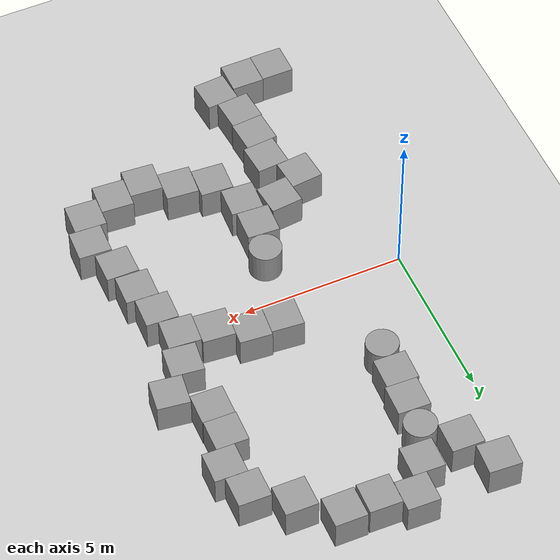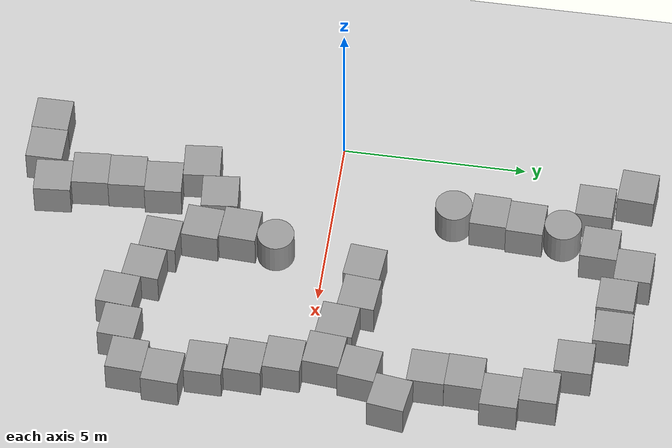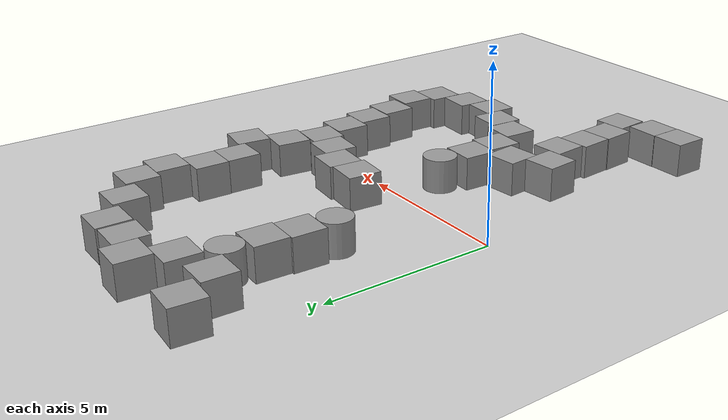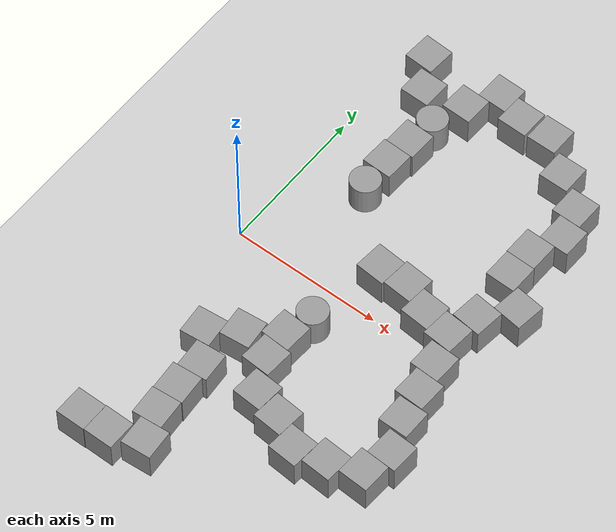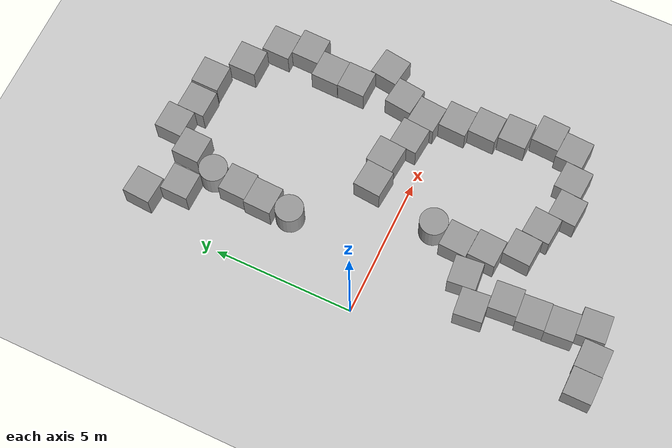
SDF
<sdf version="1.6">
 <world name="default">
  <model name="ground_plane">
   <static>1</static>
   <link name="link">
    <collision name="collision">
     <geometry><plane><normal>0 0 1</normal><size>100 100</size></plane></geometry>
     <surface>
      <contact><collide_bitmask>65535</collide_bitmask></contact>
      <friction><ode><mu>100</mu><mu2>50</mu2></ode></friction>
     </surface>
    </collision>
    <visual name="visual">
     <cast_shadows>0</cast_shadows>
     <geometry><plane><normal>0 0 1</normal><size>100 100</size></plane></geometry>
     <material>
      <script><uri>file://media/materials/scripts/gazebo.material</uri><name>Gazebo/Grey</name></script>
     </material>
    </visual>
   </link>
  </model>
  <model name="unit_cylinder_0">
   <pose>2.13016 3.28906 0.499992 -3e-06 3e-06 0.007664</pose>
   <link name="link">
    <inertial>
     <mass>1</mass>
     <inertia><ixx>0.145833</ixx><ixy>0</ixy><ixz>0</ixz><iyy>0.145833</iyy><iyz>0</iyz><izz>0.125</izz></inertia>
    </inertial>
    <collision name="collision">
     <geometry><cylinder><radius>0.5</radius><length>1</length></cylinder></geometry>
    </collision>
    <visual name="visual">
     <geometry><cylinder><radius>0.5</radius><length>1</length></cylinder></geometry>
     <material>
      <script><name>Gazebo/Grey</name><uri>file://media/materials/scripts/gazebo.material</uri></script>
     </material>
    </visual>
   </link>
  </model>
  <model name="unit_cylinder_2">
   <pose>2.35707 6.28338 0.5 0 -0 0.01532</pose>
   <link name="link">
    <inertial>
     <mass>1</mass>
     <inertia><ixx>0.145833</ixx><ixy>0</ixy><ixz>0</ixz><iyy>0.145833</iyy><iyz>0</iyz><izz>0.125</izz></inertia>
    </inertial>
    <collision name="collision">
     <geometry><cylinder><radius>0.5</radius><length>1</length></cylinder></geometry>
    </collision>
    <visual name="visual">
     <geometry><cylinder><radius>0.5</radius><length>1</length></cylinder></geometry>
     <material>
      <script><name>Gazebo/Grey</name><uri>file://media/materials/scripts/gazebo.material</uri></script>
     </material>
    </visual>
   </link>
  </model>
  <model name="unit_box_1">
   <pose>1.61751 -3.65433 0.499995 -1e-05 -0 0.093391</pose>
   <link name="link">
    <inertial>
     <mass>1</mass>
     <inertia>
      <ixx>0.166667</ixx>
      <ixy>0</ixy>
      <ixz>0</ixz>
      <iyy>0.166667</iyy>
      <iyz>0</iyz>
      <izz>0.166667</izz>
     </inertia>
    </inertial>
    <collision name="collision"><geometry><box><size>1 1 1</size></box></geometry></collision>
    <visual name="visual">
     <geometry><box><size>1 1 1</size></box></geometry>
     <material>
      <script><name>Gazebo/Grey</name><uri>file://media/materials/scripts/gazebo.material</uri></script>
     </material>
    </visual>
   </link>
  </model>
  <model name="unit_cylinder_3">
   <pose>3.76819 -1.3199 0.5 0 -0 0.098095</pose>
   <link name="link">
    <inertial>
     <mass>1</mass>
     <inertia><ixx>0.145833</ixx><ixy>0</ixy><ixz>0</ixz><iyy>0.145833</iyy><iyz>0</iyz><izz>0.125</izz></inertia>
    </inertial>
    <collision name="collision">
     <geometry><cylinder><radius>0.5</radius><length>1</length></cylinder></geometry>
    </collision>
    <visual name="visual">
     <geometry><cylinder><radius>0.5</radius><length>1</length></cylinder></geometry>
     <material>
      <script><name>Gazebo/Grey</name><uri>file://media/materials/scripts/gazebo.material</uri></script>
     </material>
    </visual>
   </link>
  </model>
  <model name="unit_box_2">
   <pose>4.32846 1.18136 0.499995 1e-05 -0 -0.087078</pose>
   <link name="link">
    <inertial>
     <mass>1</mass>
     <inertia>
      <ixx>0.166667</ixx>
      <ixy>0</ixy>
      <ixz>0</ixz>
      <iyy>0.166667</iyy>
      <iyz>0</iyz>
      <izz>0.166667</izz>
     </inertia>
    </inertial>
    <collision name="collision"><geometry><box><size>1 1 1</size></box></geometry></collision>
    <visual name="visual">
     <geometry><box><size>1 1 1</size></box></geometry>
     <material>
      <script><name>Gazebo/Grey</name><uri>file://media/materials/scripts/gazebo.material</uri></script>
     </material>
    </visual>
   </link>
  </model>
  <model name="unit_box_5_clone_1">
   <pose>0.631048 -7.96603 0.499995 1e-05 -0 -0.000764</pose>
   <link name="link">
    <inertial>
     <mass>1</mass>
     <inertia>
      <ixx>0.166667</ixx>
      <ixy>0</ixy>
      <ixz>0</ixz>
      <iyy>0.166667</iyy>
      <iyz>0</iyz>
      <izz>0.166667</izz>
     </inertia>
    </inertial>
    <collision name="collision"><geometry><box><size>1 1 1</size></box></geometry></collision>
    <visual name="visual">
     <geometry><box><size>1 1 1</size></box></geometry>
     <material>
      <script><name>Gazebo/Grey</name><uri>file://media/materials/scripts/gazebo.material</uri></script>
     </material>
    </visual>
   </link>
  </model>
  <model name="unit_box_5_clone_2">
   <pose>1.63194 -7.95048 0.499995 1e-05 0 -0.001337</pose>
   <link name="link">
    <inertial>
     <mass>1</mass>
     <inertia>
      <ixx>0.166667</ixx>
      <ixy>0</ixy>
      <ixz>0</ixz>
      <iyy>0.166667</iyy>
      <iyz>0</iyz>
      <izz>0.166667</izz>
     </inertia>
    </inertial>
    <collision name="collision"><geometry><box><size>1 1 1</size></box></geometry></collision>
    <visual name="visual">
     <geometry><box><size>1 1 1</size></box></geometry>
     <material>
      <script><name>Gazebo/Grey</name><uri>file://media/materials/scripts/gazebo.material</uri></script>
     </material>
    </visual>
   </link>
  </model>
  <model name="unit_box_5_clone_3">
   <pose>2.67093 -7.58371 0.499995 -0 -1e-05 0.076198</pose>
   <link name="link">
    <inertial>
     <mass>1</mass>
     <inertia>
      <ixx>0.166667</ixx>
      <ixy>0</ixy>
      <ixz>0</ixz>
      <iyy>0.166667</iyy>
      <iyz>0</iyz>
      <izz>0.166667</izz>
     </inertia>
    </inertial>
    <collision name="collision"><geometry><box><size>1 1 1</size></box></geometry></collision>
    <visual name="visual">
     <geometry><box><size>1 1 1</size></box></geometry>
     <material>
      <script><name>Gazebo/Grey</name><uri>file://media/materials/scripts/gazebo.material</uri></script>
     </material>
    </visual>
   </link>
  </model>
  <model name="unit_box_5_clone_4">
   <pose>2.29353 -6.60938 0.5 0 -0 0.077088</pose>
   <link name="link">
    <inertial>
     <mass>1</mass>
     <inertia>
      <ixx>0.166667</ixx>
      <ixy>0</ixy>
      <ixz>0</ixz>
      <iyy>0.166667</iyy>
      <iyz>0</iyz>
      <izz>0.166667</izz>
     </inertia>
    </inertial>
    <collision name="collision"><geometry><box><size>1 1 1</size></box></geometry></collision>
    <visual name="visual">
     <geometry><box><size>1 1 1</size></box></geometry>
     <material>
      <script><name>Gazebo/Grey</name><uri>file://media/materials/scripts/gazebo.material</uri></script>
     </material>
    </visual>
   </link>
  </model>
  <model name="unit_box_5_clone_5">
   <pose>2.2407 -5.61048 0.499995 0 1e-05 0.077075</pose>
   <link name="link">
    <inertial>
     <mass>1</mass>
     <inertia>
      <ixx>0.166667</ixx>
      <ixy>0</ixy>
      <ixz>0</ixz>
      <iyy>0.166667</iyy>
      <iyz>0</iyz>
      <izz>0.166667</izz>
     </inertia>
    </inertial>
    <collision name="collision"><geometry><box><size>1 1 1</size></box></geometry></collision>
    <visual name="visual">
     <geometry><box><size>1 1 1</size></box></geometry>
     <material>
      <script><name>Gazebo/Grey</name><uri>file://media/materials/scripts/gazebo.material</uri></script>
     </material>
    </visual>
   </link>
  </model>
  <model name="unit_box_5_clone_6">
   <pose>2.29998 -4.60288 0.5 0 -0 0.07714</pose>
   <link name="link">
    <inertial>
     <mass>1</mass>
     <inertia>
      <ixx>0.166667</ixx>
      <ixy>0</ixy>
      <ixz>0</ixz>
      <iyy>0.166667</iyy>
      <iyz>0</iyz>
      <izz>0.166667</izz>
     </inertia>
    </inertial>
    <collision name="collision"><geometry><box><size>1 1 1</size></box></geometry></collision>
    <visual name="visual">
     <geometry><box><size>1 1 1</size></box></geometry>
     <material>
      <script><name>Gazebo/Grey</name><uri>file://media/materials/scripts/gazebo.material</uri></script>
     </material>
    </visual>
   </link>
  </model>
  <model name="unit_box_5_clone_7">
   <pose>2.56221 -3.01751 0.5 0 -0 0.095408</pose>
   <link name="link">
    <inertial>
     <mass>1</mass>
     <inertia>
      <ixx>0.166667</ixx>
      <ixy>0</ixy>
      <ixz>0</ixz>
      <iyy>0.166667</iyy>
      <iyz>0</iyz>
      <izz>0.166667</izz>
     </inertia>
    </inertial>
    <collision name="collision"><geometry><box><size>1 1 1</size></box></geometry></collision>
    <visual name="visual">
     <geometry><box><size>1 1 1</size></box></geometry>
     <material>
      <script><name>Gazebo/Grey</name><uri>file://media/materials/scripts/gazebo.material</uri></script>
     </material>
    </visual>
   </link>
  </model>
  <model name="unit_box_5_clone_8">
   <pose>3.64924 -3.31863 0.5 0 -0 -0.055843</pose>
   <link name="link">
    <inertial>
     <mass>1</mass>
     <inertia>
      <ixx>0.166667</ixx>
      <ixy>0</ixy>
      <ixz>0</ixz>
      <iyy>0.166667</iyy>
      <iyz>0</iyz>
      <izz>0.166667</izz>
     </inertia>
    </inertial>
    <collision name="collision"><geometry><box><size>1 1 1</size></box></geometry></collision>
    <visual name="visual">
     <geometry><box><size>1 1 1</size></box></geometry>
     <material>
      <script><name>Gazebo/Grey</name><uri>file://media/materials/scripts/gazebo.material</uri></script>
     </material>
    </visual>
   </link>
  </model>
  <model name="unit_box_5_clone_9">
   <pose>4.17753 -4.37603 0.5 0 0 -0.066539</pose>
   <link name="link">
    <inertial>
     <mass>1</mass>
     <inertia>
      <ixx>0.166667</ixx>
      <ixy>0</ixy>
      <ixz>0</ixz>
      <iyy>0.166667</iyy>
      <iyz>0</iyz>
      <izz>0.166667</izz>
     </inertia>
    </inertial>
    <collision name="collision"><geometry><box><size>1 1 1</size></box></geometry></collision>
    <visual name="visual">
     <geometry><box><size>1 1 1</size></box></geometry>
     <material>
      <script><name>Gazebo/Grey</name><uri>file://media/materials/scripts/gazebo.material</uri></script>
     </material>
    </visual>
   </link>
  </model>
  <model name="unit_box_5_clone_10">
   <pose>5.1654 -4.66592 0.499995 0 -1e-05 -0.083866</pose>
   <link name="link">
    <inertial>
     <mass>1</mass>
     <inertia>
      <ixx>0.166667</ixx>
      <ixy>0</ixy>
      <ixz>0</ixz>
      <iyy>0.166667</iyy>
      <iyz>0</iyz>
      <izz>0.166667</izz>
     </inertia>
    </inertial>
    <collision name="collision"><geometry><box><size>1 1 1</size></box></geometry></collision>
    <visual name="visual">
     <geometry><box><size>1 1 1</size></box></geometry>
     <material>
      <script><name>Gazebo/Grey</name><uri>file://media/materials/scripts/gazebo.material</uri></script>
     </material>
    </visual>
   </link>
  </model>
  <model name="unit_box_5_clone_11">
   <pose>6.12609 -5.21323 0.499995 -1e-05 -0 -0.077569</pose>
   <link name="link">
    <inertial>
     <mass>1</mass>
     <inertia>
      <ixx>0.166667</ixx>
      <ixy>0</ixy>
      <ixz>0</ixz>
      <iyy>0.166667</iyy>
      <iyz>0</iyz>
      <izz>0.166667</izz>
     </inertia>
    </inertial>
    <collision name="collision"><geometry><box><size>1 1 1</size></box></geometry></collision>
    <visual name="visual">
     <geometry><box><size>1 1 1</size></box></geometry>
     <material>
      <script><name>Gazebo/Grey</name><uri>file://media/materials/scripts/gazebo.material</uri></script>
     </material>
    </visual>
   </link>
  </model>
  <model name="unit_box_5_clone_12">
   <pose>7.14926 -4.99337 0.5 -0 -0 -0.062698</pose>
   <link name="link">
    <inertial>
     <mass>1</mass>
     <inertia>
      <ixx>0.166667</ixx>
      <ixy>0</ixy>
      <ixz>0</ixz>
      <iyy>0.166667</iyy>
      <iyz>0</iyz>
      <izz>0.166667</izz>
     </inertia>
    </inertial>
    <collision name="collision"><geometry><box><size>1 1 1</size></box></geometry></collision>
    <visual name="visual">
     <geometry><box><size>1 1 1</size></box></geometry>
     <material>
      <script><name>Gazebo/Grey</name><uri>file://media/materials/scripts/gazebo.material</uri></script>
     </material>
    </visual>
   </link>
  </model>
  <model name="unit_box_5_clone_13">
   <pose>8.17607 -4.61194 0.499995 0 -1e-05 -0.050131</pose>
   <link name="link">
    <inertial>
     <mass>1</mass>
     <inertia>
      <ixx>0.166667</ixx>
      <ixy>0</ixy>
      <ixz>0</ixz>
      <iyy>0.166667</iyy>
      <iyz>0</iyz>
      <izz>0.166667</izz>
     </inertia>
    </inertial>
    <collision name="collision"><geometry><box><size>1 1 1</size></box></geometry></collision>
    <visual name="visual">
     <geometry><box><size>1 1 1</size></box></geometry>
     <material>
      <script><name>Gazebo/Grey</name><uri>file://media/materials/scripts/gazebo.material</uri></script>
     </material>
    </visual>
   </link>
  </model>
  <model name="unit_box_5_clone_14">
   <pose>8.42571 -3.6221 0.499995 0 1e-05 -0.048098</pose>
   <link name="link">
    <inertial>
     <mass>1</mass>
     <inertia>
      <ixx>0.166667</ixx>
      <ixy>0</ixy>
      <ixz>0</ixz>
      <iyy>0.166667</iyy>
      <iyz>0</iyz>
      <izz>0.166667</izz>
     </inertia>
    </inertial>
    <collision name="collision"><geometry><box><size>1 1 1</size></box></geometry></collision>
    <visual name="visual">
     <geometry><box><size>1 1 1</size></box></geometry>
     <material>
      <script><name>Gazebo/Grey</name><uri>file://media/materials/scripts/gazebo.material</uri></script>
     </material>
    </visual>
   </link>
  </model>
  <model name="unit_box_5_clone_15">
   <pose>8 -2.55585 0.499995 -1e-05 -0 -0.010235</pose>
   <link name="link">
    <inertial>
     <mass>1</mass>
     <inertia>
      <ixx>0.166667</ixx>
      <ixy>0</ixy>
      <ixz>0</ixz>
      <iyy>0.166667</iyy>
      <iyz>0</iyz>
      <izz>0.166667</izz>
     </inertia>
    </inertial>
    <collision name="collision"><geometry><box><size>1 1 1</size></box></geometry></collision>
    <visual name="visual">
     <geometry><box><size>1 1 1</size></box></geometry>
     <material>
      <script><name>Gazebo/Grey</name><uri>file://media/materials/scripts/gazebo.material</uri></script>
     </material>
    </visual>
   </link>
  </model>
  <model name="unit_box_5_clone_16">
   <pose>7.79479 -1.5267 0.499995 -0 1e-05 -0.036829</pose>
   <link name="link">
    <inertial>
     <mass>1</mass>
     <inertia>
      <ixx>0.166667</ixx>
      <ixy>0</ixy>
      <ixz>0</ixz>
      <iyy>0.166667</iyy>
      <iyz>0</iyz>
      <izz>0.166667</izz>
     </inertia>
    </inertial>
    <collision name="collision"><geometry><box><size>1 1 1</size></box></geometry></collision>
    <visual name="visual">
     <geometry><box><size>1 1 1</size></box></geometry>
     <material>
      <script><name>Gazebo/Grey</name><uri>file://media/materials/scripts/gazebo.material</uri></script>
     </material>
    </visual>
   </link>
  </model>
  <model name="unit_box_5_clone_17">
   <pose>7.57763 -0.515913 0.499995 -1e-05 -0 -0.040724</pose>
   <link name="link">
    <inertial>
     <mass>1</mass>
     <inertia>
      <ixx>0.166667</ixx>
      <ixy>0</ixy>
      <ixz>0</ixz>
      <iyy>0.166667</iyy>
      <iyz>0</iyz>
      <izz>0.166667</izz>
     </inertia>
    </inertial>
    <collision name="collision"><geometry><box><size>1 1 1</size></box></geometry></collision>
    <visual name="visual">
     <geometry><box><size>1 1 1</size></box></geometry>
     <material>
      <script><name>Gazebo/Grey</name><uri>file://media/materials/scripts/gazebo.material</uri></script>
     </material>
    </visual>
   </link>
  </model>
  <model name="unit_box_5_clone_18">
   <pose>7.28255 0.519387 0.5 0 -0 -0.08662</pose>
   <link name="link">
    <inertial>
     <mass>1</mass>
     <inertia>
      <ixx>0.166667</ixx>
      <ixy>0</ixy>
      <ixz>0</ixz>
      <iyy>0.166667</iyy>
      <iyz>0</iyz>
      <izz>0.166667</izz>
     </inertia>
    </inertial>
    <collision name="collision"><geometry><box><size>1 1 1</size></box></geometry></collision>
    <visual name="visual">
     <geometry><box><size>1 1 1</size></box></geometry>
     <material>
      <script><name>Gazebo/Grey</name><uri>file://media/materials/scripts/gazebo.material</uri></script>
     </material>
    </visual>
   </link>
  </model>
  <model name="unit_box_5_clone_19">
   <pose>7.59342 1.5054 0.499995 0 1e-05 -0.11884</pose>
   <link name="link">
    <inertial>
     <mass>1</mass>
     <inertia>
      <ixx>0.166667</ixx>
      <ixy>0</ixy>
      <ixz>0</ixz>
      <iyy>0.166667</iyy>
      <iyz>0</iyz>
      <izz>0.166667</izz>
     </inertia>
    </inertial>
    <collision name="collision"><geometry><box><size>1 1 1</size></box></geometry></collision>
    <visual name="visual">
     <geometry><box><size>1 1 1</size></box></geometry>
     <material>
      <script><name>Gazebo/Grey</name><uri>file://media/materials/scripts/gazebo.material</uri></script>
     </material>
    </visual>
   </link>
  </model>
  <model name="unit_box_5_clone_20">
   <pose>8.39993 2.41317 0.5 -2e-06 2e-06 -0.13521</pose>
   <link name="link">
    <inertial>
     <mass>1</mass>
     <inertia>
      <ixx>0.166667</ixx>
      <ixy>0</ixy>
      <ixz>0</ixz>
      <iyy>0.166667</iyy>
      <iyz>0</iyz>
      <izz>0.166667</izz>
     </inertia>
    </inertial>
    <collision name="collision"><geometry><box><size>1 1 1</size></box></geometry></collision>
    <visual name="visual">
     <geometry><box><size>1 1 1</size></box></geometry>
     <material>
      <script><name>Gazebo/Grey</name><uri>file://media/materials/scripts/gazebo.material</uri></script>
     </material>
    </visual>
   </link>
  </model>
  <model name="unit_box_5_clone_21">
   <pose>7.45662 3.29351 0.499995 1e-05 -0 -0.024377</pose>
   <link name="link">
    <inertial>
     <mass>1</mass>
     <inertia>
      <ixx>0.166667</ixx>
      <ixy>0</ixy>
      <ixz>0</ixz>
      <iyy>0.166667</iyy>
      <iyz>0</iyz>
      <izz>0.166667</izz>
     </inertia>
    </inertial>
    <collision name="collision"><geometry><box><size>1 1 1</size></box></geometry></collision>
    <visual name="visual">
     <geometry><box><size>1 1 1</size></box></geometry>
     <material>
      <script><name>Gazebo/Grey</name><uri>file://media/materials/scripts/gazebo.material</uri></script>
     </material>
    </visual>
   </link>
  </model>
  <model name="unit_box_5_clone_22">
   <pose>7.46341 4.29364 0.499995 1e-05 -0 -0.024376</pose>
   <link name="link">
    <inertial>
     <mass>1</mass>
     <inertia>
      <ixx>0.166667</ixx>
      <ixy>0</ixy>
      <ixz>0</ixz>
      <iyy>0.166667</iyy>
      <iyz>0</iyz>
      <izz>0.166667</izz>
     </inertia>
    </inertial>
    <collision name="collision"><geometry><box><size>1 1 1</size></box></geometry></collision>
    <visual name="visual">
     <geometry><box><size>1 1 1</size></box></geometry>
     <material>
      <script><name>Gazebo/Grey</name><uri>file://media/materials/scripts/gazebo.material</uri></script>
     </material>
    </visual>
   </link>
  </model>
  <model name="unit_box_5_clone_23">
   <pose>7.93263 5.28308 0.5 0 0 -0.023258</pose>
   <link name="link">
    <inertial>
     <mass>1</mass>
     <inertia>
      <ixx>0.166667</ixx>
      <ixy>0</ixy>
      <ixz>0</ixz>
      <iyy>0.166667</iyy>
      <iyz>0</iyz>
      <izz>0.166667</izz>
     </inertia>
    </inertial>
    <collision name="collision"><geometry><box><size>1 1 1</size></box></geometry></collision>
    <visual name="visual">
     <geometry><box><size>1 1 1</size></box></geometry>
     <material>
      <script><name>Gazebo/Grey</name><uri>file://media/materials/scripts/gazebo.material</uri></script>
     </material>
    </visual>
   </link>
  </model>
  <model name="unit_box_5_clone_24">
   <pose>7.65008 6.29093 0.499995 -1e-05 -0 -0.018229</pose>
   <link name="link">
    <inertial>
     <mass>1</mass>
     <inertia>
      <ixx>0.166667</ixx>
      <ixy>0</ixy>
      <ixz>0</ixz>
      <iyy>0.166667</iyy>
      <iyz>0</iyz>
      <izz>0.166667</izz>
     </inertia>
    </inertial>
    <collision name="collision"><geometry><box><size>1 1 1</size></box></geometry></collision>
    <visual name="visual">
     <geometry><box><size>1 1 1</size></box></geometry>
     <material>
      <script><name>Gazebo/Grey</name><uri>file://media/materials/scripts/gazebo.material</uri></script>
     </material>
    </visual>
   </link>
  </model>
  <model name="unit_box_5_clone_25">
   <pose>6.59096 7.08761 0.499995 -1e-05 -0 -0.010235</pose>
   <link name="link">
    <inertial>
     <mass>1</mass>
     <inertia>
      <ixx>0.166667</ixx>
      <ixy>0</ixy>
      <ixz>0</ixz>
      <iyy>0.166667</iyy>
      <iyz>0</iyz>
      <izz>0.166667</izz>
     </inertia>
    </inertial>
    <collision name="collision"><geometry><box><size>1 1 1</size></box></geometry></collision>
    <visual name="visual">
     <geometry><box><size>1 1 1</size></box></geometry>
     <material>
      <script><name>Gazebo/Grey</name><uri>file://media/materials/scripts/gazebo.material</uri></script>
     </material>
    </visual>
   </link>
  </model>
  <model name="unit_box_5_clone_26">
   <pose>5.49278 7.98432 0.499995 0 1e-05 -0.010235</pose>
   <link name="link">
    <inertial>
     <mass>1</mass>
     <inertia>
      <ixx>0.166667</ixx>
      <ixy>0</ixy>
      <ixz>0</ixz>
      <iyy>0.166667</iyy>
      <iyz>0</iyz>
      <izz>0.166667</izz>
     </inertia>
    </inertial>
    <collision name="collision"><geometry><box><size>1 1 1</size></box></geometry></collision>
    <visual name="visual">
     <geometry><box><size>1 1 1</size></box></geometry>
     <material>
      <script><name>Gazebo/Grey</name><uri>file://media/materials/scripts/gazebo.material</uri></script>
     </material>
    </visual>
   </link>
  </model>
  <model name="unit_box_5_clone_27">
   <pose>4.42508 7.96987 0.499995 0 -1e-05 -0.027758</pose>
   <link name="link">
    <inertial>
     <mass>1</mass>
     <inertia>
      <ixx>0.166667</ixx>
      <ixy>0</ixy>
      <ixz>0</ixz>
      <iyy>0.166667</iyy>
      <iyz>0</iyz>
      <izz>0.166667</izz>
     </inertia>
    </inertial>
    <collision name="collision"><geometry><box><size>1 1 1</size></box></geometry></collision>
    <visual name="visual">
     <geometry><box><size>1 1 1</size></box></geometry>
     <material>
      <script><name>Gazebo/Grey</name><uri>file://media/materials/scripts/gazebo.material</uri></script>
     </material>
    </visual>
   </link>
  </model>
  <model name="unit_box_5_clone_28">
   <pose>6.29661 0.72496 0.499995 -0 -1e-05 -0.086609</pose>
   <link name="link">
    <inertial>
     <mass>1</mass>
     <inertia>
      <ixx>0.166667</ixx>
      <ixy>0</ixy>
      <ixz>0</ixz>
      <iyy>0.166667</iyy>
      <iyz>0</iyz>
      <izz>0.166667</izz>
     </inertia>
    </inertial>
    <collision name="collision"><geometry><box><size>1 1 1</size></box></geometry></collision>
    <visual name="visual">
     <geometry><box><size>1 1 1</size></box></geometry>
     <material>
      <script><name>Gazebo/Grey</name><uri>file://media/materials/scripts/gazebo.material</uri></script>
     </material>
    </visual>
   </link>
  </model>
  <model name="unit_box_5_clone_29">
   <pose>5.33197 1.17646 0.499995 0 -1e-05 -0.086961</pose>
   <link name="link">
    <inertial>
     <mass>1</mass>
     <inertia>
      <ixx>0.166667</ixx>
      <ixy>0</ixy>
      <ixz>0</ixz>
      <iyy>0.166667</iyy>
      <iyz>0</iyz>
      <izz>0.166667</izz>
     </inertia>
    </inertial>
    <collision name="collision"><geometry><box><size>1 1 1</size></box></geometry></collision>
    <visual name="visual">
     <geometry><box><size>1 1 1</size></box></geometry>
     <material>
      <script><name>Gazebo/Grey</name><uri>file://media/materials/scripts/gazebo.material</uri></script>
     </material>
    </visual>
   </link>
  </model>
  <model name="unit_box_5_clone_30">
   <pose>3.43377 8.3251 0.499995 0 1e-05 -0.032247</pose>
   <link name="link">
    <inertial>
     <mass>1</mass>
     <inertia>
      <ixx>0.166667</ixx>
      <ixy>0</ixy>
      <ixz>0</ixz>
      <iyy>0.166667</iyy>
      <iyz>0</iyz>
      <izz>0.166667</izz>
     </inertia>
    </inertial>
    <collision name="collision"><geometry><box><size>1 1 1</size></box></geometry></collision>
    <visual name="visual">
     <geometry><box><size>1 1 1</size></box></geometry>
     <material>
      <script><name>Gazebo/Grey</name><uri>file://media/materials/scripts/gazebo.material</uri></script>
     </material>
    </visual>
   </link>
  </model>
  <model name="unit_box_5_clone_31">
   <pose>2.81165 7.34507 0.499995 1e-05 -0 -0.037259</pose>
   <link name="link">
    <inertial>
     <mass>1</mass>
     <inertia>
      <ixx>0.166667</ixx>
      <ixy>0</ixy>
      <ixz>0</ixz>
      <iyy>0.166667</iyy>
      <iyz>0</iyz>
      <izz>0.166667</izz>
     </inertia>
    </inertial>
    <collision name="collision"><geometry><box><size>1 1 1</size></box></geometry></collision>
    <visual name="visual">
     <geometry><box><size>1 1 1</size></box></geometry>
     <material>
      <script><name>Gazebo/Grey</name><uri>file://media/materials/scripts/gazebo.material</uri></script>
     </material>
    </visual>
   </link>
  </model>
  <model name="unit_box_5_clone_32">
   <pose>1.45141 7.06972 0.499995 1e-05 -0 -0.024786</pose>
   <link name="link">
    <inertial>
     <mass>1</mass>
     <inertia>
      <ixx>0.166667</ixx>
      <ixy>0</ixy>
      <ixz>0</ixz>
      <iyy>0.166667</iyy>
      <iyz>0</iyz>
      <izz>0.166667</izz>
     </inertia>
    </inertial>
    <collision name="collision"><geometry><box><size>1 1 1</size></box></geometry></collision>
    <visual name="visual">
     <geometry><box><size>1 1 1</size></box></geometry>
     <material>
      <script><name>Gazebo/Grey</name><uri>file://media/materials/scripts/gazebo.material</uri></script>
     </material>
    </visual>
   </link>
  </model>
  <model name="unit_box_5_clone_33">
   <pose>0.811823 8.1506 0.5 -0 -0 -0.06413</pose>
   <link name="link">
    <inertial>
     <mass>1</mass>
     <inertia>
      <ixx>0.166667</ixx>
      <ixy>0</ixy>
      <ixz>0</ixz>
      <iyy>0.166667</iyy>
      <iyz>0</iyz>
      <izz>0.166667</izz>
     </inertia>
    </inertial>
    <collision name="collision"><geometry><box><size>1 1 1</size></box></geometry></collision>
    <visual name="visual">
     <geometry><box><size>1 1 1</size></box></geometry>
     <material>
      <script><name>Gazebo/Grey</name><uri>file://media/materials/scripts/gazebo.material</uri></script>
     </material>
    </visual>
   </link>
  </model>
  <model name="unit_box_5_clone_64">
   <pose>2.16959 4.28836 0.499995 -1e-05 -0 -0.033914</pose>
   <link name="link">
    <inertial>
     <mass>1</mass>
     <inertia>
      <ixx>0.166667</ixx>
      <ixy>0</ixy>
      <ixz>0</ixz>
      <iyy>0.166667</iyy>
      <iyz>0</iyz>
      <izz>0.166667</izz>
     </inertia>
    </inertial>
    <collision name="collision"><geometry><box><size>1 1 1</size></box></geometry></collision>
    <visual name="visual">
     <geometry><box><size>1 1 1</size></box></geometry>
     <material>
      <script><name>Gazebo/Grey</name><uri>file://media/materials/scripts/gazebo.material</uri></script>
     </material>
    </visual>
   </link>
  </model>
  <model name="unit_box_5_clone_65">
   <pose>2.26994 5.28556 0.499995 -1e-05 -0 -0.033935</pose>
   <link name="link">
    <inertial>
     <mass>1</mass>
     <inertia>
      <ixx>0.166667</ixx>
      <ixy>0</ixy>
      <ixz>0</ixz>
      <iyy>0.166667</iyy>
      <iyz>0</iyz>
      <izz>0.166667</izz>
     </inertia>
    </inertial>
    <collision name="collision"><geometry><box><size>1 1 1</size></box></geometry></collision>
    <visual name="visual">
     <geometry><box><size>1 1 1</size></box></geometry>
     <material>
      <script><name>Gazebo/Grey</name><uri>file://media/materials/scripts/gazebo.material</uri></script>
     </material>
    </visual>
   </link>
  </model>
  <model name="unit_box_5_clone_66">
   <pose>3.56745 -2.31087 0.499995 1e-05 -0 -0.051845</pose>
   <link name="link">
    <inertial>
     <mass>1</mass>
     <inertia>
      <ixx>0.166667</ixx>
      <ixy>0</ixy>
      <ixz>0</ixz>
      <iyy>0.166667</iyy>
      <iyz>0</iyz>
      <izz>0.166667</izz>
     </inertia>
    </inertial>
    <collision name="collision"><geometry><box><size>1 1 1</size></box></geometry></collision>
    <visual name="visual">
     <geometry><box><size>1 1 1</size></box></geometry>
     <material>
      <script><name>Gazebo/Grey</name><uri>file://media/materials/scripts/gazebo.material</uri></script>
     </material>
    </visual>
   </link>
  </model>
 </world>
</sdf>
